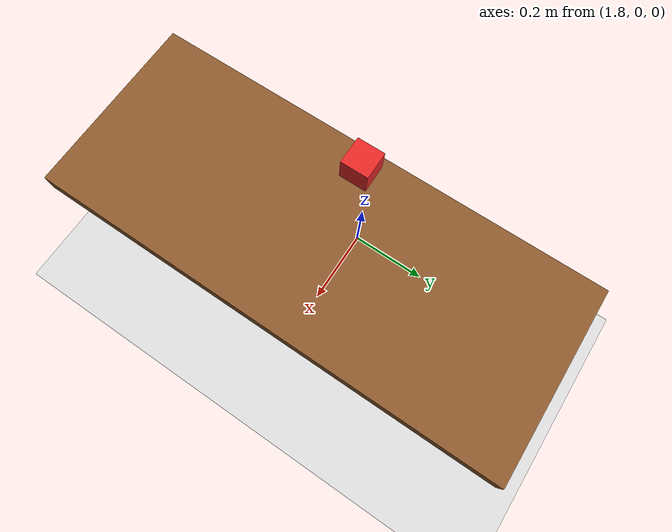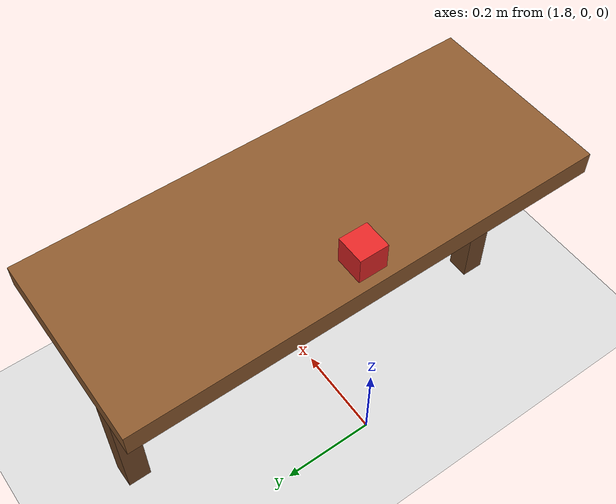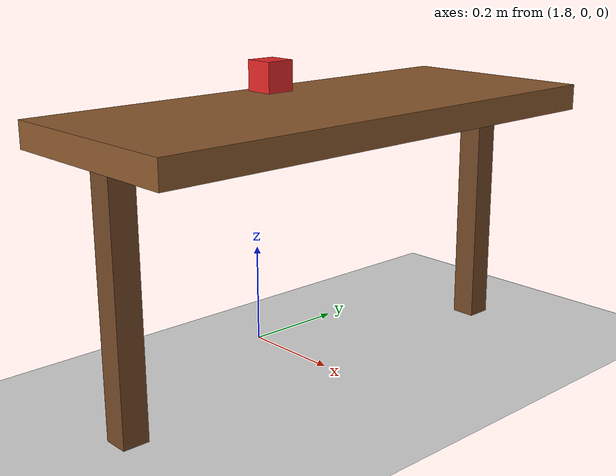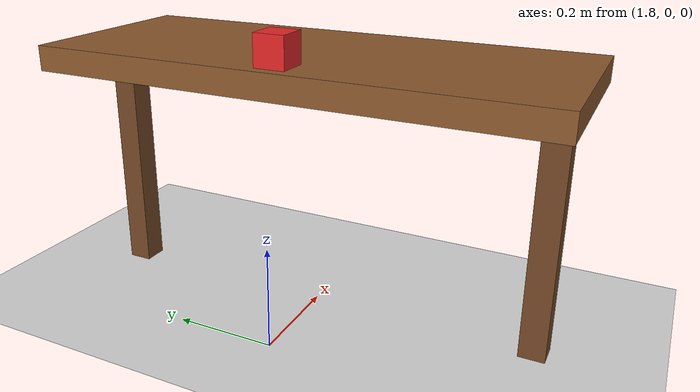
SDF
<?xml version="1.0" ?>
<sdf version="1.10">
  <world name="store">

    <physics name="1ms" type="ignored">
      <max_step_size>0.001</max_step_size>
      <real_time_factor>1.0</real_time_factor>
    </physics>

    <plugin filename="gz-sim-physics-system"           name="gz::sim::systems::Physics"/>
    <plugin filename="gz-sim-user-commands-system"     name="gz::sim::systems::UserCommands"/>
    <plugin filename="gz-sim-scene-broadcaster-system" name="gz::sim::systems::SceneBroadcaster"/>
    <plugin filename="gz-sim-sensors-system"           name="gz::sim::systems::Sensors">
      <render_engine>ogre2</render_engine>
    </plugin>

    <light type="directional" name="sun">
      <cast_shadows>true</cast_shadows>
      <pose>0 0 10 0 0 0</pose>
      <diffuse>0.9 0.9 0.9 1</diffuse>
      <specular>0.2 0.2 0.2 1</specular>
      <direction>-0.5 0.1 -0.9</direction>
    </light>

    <!-- ============================================================
         GROUND
         ============================================================ -->
    <model name="ground_plane">
      <static>true</static>
      <link name="link">
        <collision name="collision">
          <geometry><plane><normal>0 0 1</normal><size>20 20</size></plane></geometry>
          <surface>
            <friction>
              <ode>
                <mu>1.0</mu>
                <mu2>1.0</mu2>
              </ode>
            </friction>
          </surface>
        </collision>
        <visual name="visual">
          <geometry><plane><normal>0 0 1</normal><size>20 20</size></plane></geometry>
          <material>
            <ambient>0.85 0.85 0.85 1</ambient>
            <diffuse>0.85 0.85 0.85 1</diffuse>
          </material>
        </visual>
      </link>
    </model>

    <model name="shelf">
      <static>true</static>
      <pose>2.0 0 0.5 0 0 0</pose>
      <link name="link">
        <collision name="collision">
          <geometry><box><size>0.4 1.0 0.05</size></box></geometry>
          <surface>
            <friction>
              <ode>
                <mu>1.5</mu>
                <mu2>1.5</mu2>
              </ode>
            </friction>
            <contact>
              <ode>
                <kp>1e7</kp>
                <kd>50</kd>
                <min_depth>0.001</min_depth>
              </ode>
            </contact>
          </surface>
        </collision>
        <visual name="visual">
          <geometry><box><size>0.4 1.0 0.05</size></box></geometry>
          <material>
            <ambient>0.55 0.35 0.18 1</ambient>
            <diffuse>0.55 0.35 0.18 1</diffuse>
          </material>
        </visual>
      </link>
    </model>

    <!-- Two shelf legs for visual clarity -->
    <model name="shelf_leg_left">
      <static>true</static>
      <pose>2.0 -0.45 0.25 0 0 0</pose>
      <link name="link">
        <collision name="collision"><geometry><box><size>0.05 0.05 0.5</size></box></geometry></collision>
        <visual name="visual">
          <geometry><box><size>0.05 0.05 0.5</size></box></geometry>
          <material><ambient>0.45 0.28 0.15 1</ambient><diffuse>0.45 0.28 0.15 1</diffuse></material>
        </visual>
      </link>
    </model>
    <model name="shelf_leg_right">
      <static>true</static>
      <pose>2.0 0.45 0.25 0 0 0</pose>
      <link name="link">
        <collision name="collision"><geometry><box><size>0.05 0.05 0.5</size></box></geometry></collision>
        <visual name="visual">
          <geometry><box><size>0.05 0.05 0.5</size></box></geometry>
          <material><ambient>0.45 0.28 0.15 1</ambient><diffuse>0.45 0.28 0.15 1</diffuse></material>
        </visual>
      </link>
    </model>

    <model name="soda_can">
      <pose>1.85 0 0.5555 0 0 0</pose>
      <link name="link">
        <inertial>
          <mass>0.15</mass>
          <!-- Cube inertia: I = m * a^2 / 6 with a = 0.06 -->
          <inertia>
            <ixx>0.00009</ixx>
            <iyy>0.00009</iyy>
            <izz>0.00009</izz>
            <ixy>0</ixy><ixz>0</ixz><iyz>0</iyz>
          </inertia>
        </inertial>
        <collision name="collision">
          <geometry><box><size>0.06 0.06 0.06</size></box></geometry>
          <surface>
            <friction>
              <ode>
                <mu>1.8</mu>
                <mu2>1.8</mu2>
              </ode>
            </friction>
            <contact>
              <ode>
                <kp>1e7</kp>
                <kd>50</kd>
                <min_depth>0.001</min_depth>
              </ode>
            </contact>
          </surface>
        </collision>
        <visual name="visual">
          <geometry><box><size>0.06 0.06 0.06</size></box></geometry>
          <material>
            <ambient>0.85 0.10 0.10 1</ambient>
            <diffuse>0.90 0.15 0.15 1</diffuse>
            <specular>0.4 0.4 0.4 1</specular>
          </material>
        </visual>
      </link>
    </model>

  </world>
</sdf>
